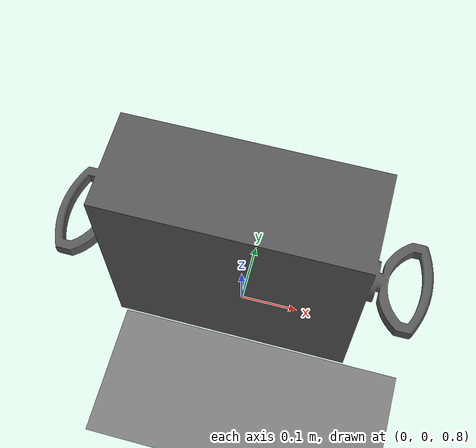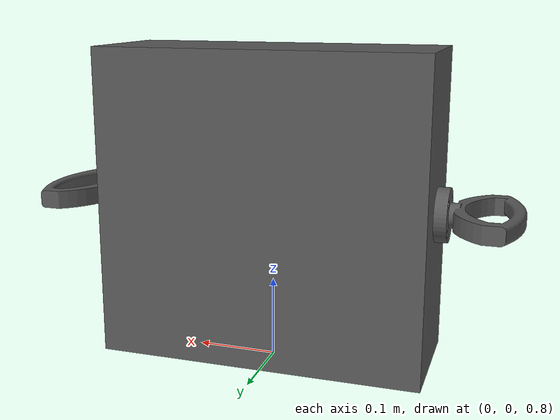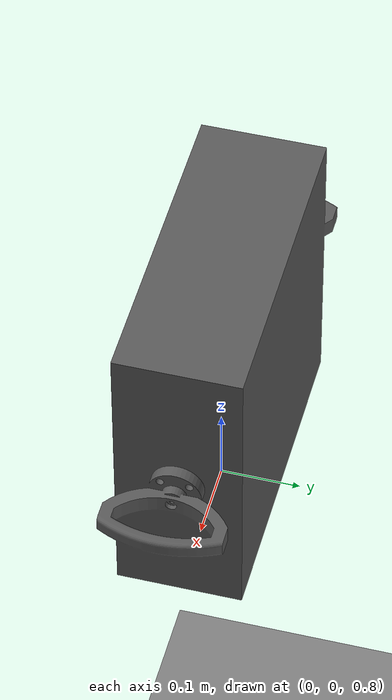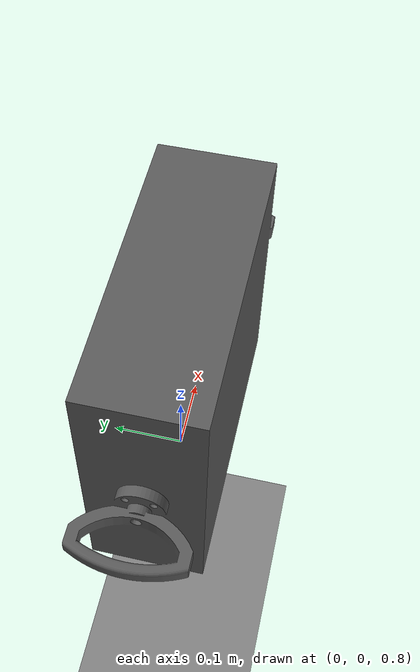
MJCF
<mujoco model="lab_box">
    <compiler meshdir="./meshes"/>

    <default>
        <motor ctrlrange="-1 1" ctrllimited="true"/>
        <default class="body">
            <geom type="capsule" condim="1" friction="1.0 0.05 0.05" solimp=".9 .99 .003" solref=".015 1"/>
            <joint type="hinge" damping="0.1" stiffness="5" armature=".007" limited="true" solimplimit="0 .99 .01"/>
            <site size=".04" group="3"/>
            <default class="force-torque">
                <site type="box" size=".01 .01 .02" rgba="1 0 0 1"/>
            </default>
            <default class="touch">
                <site type="capsule" rgba="0 0 1 .3"/>
            </default>
        </default>
    </default>
        <asset>
        <mesh name="box" file="lab_box.obj" scale="1 1 1"/>
    </asset>
    <worldbody>
        <light directional="true" pos="-0.5 0.5 3" dir="0 0 -1"/>
        <geom name="floor" type="plane" conaffinity="1" size="100 100 .2"/>
        <body name="box" pos="0 0 1">
            <geom type="mesh" rgba="0.35 0.35 0.35 1" mesh="box"/>
        </body>
    </worldbody>
</mujoco>
